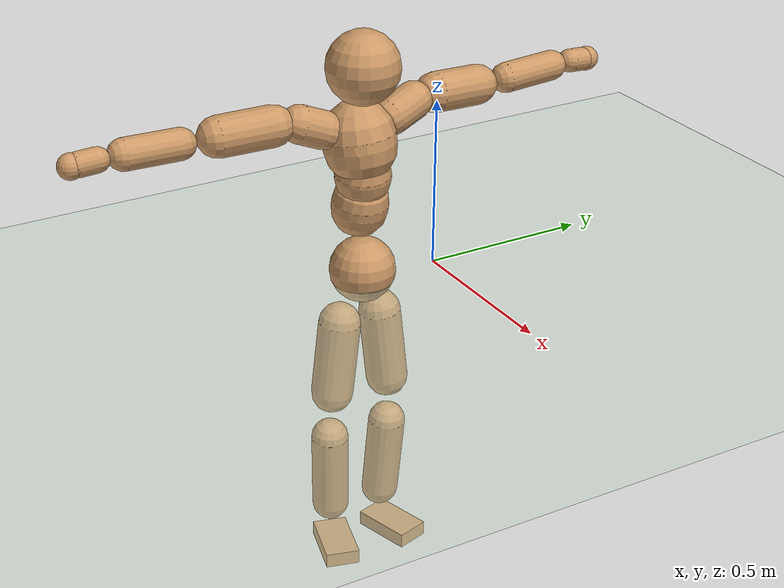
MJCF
<mujoco model="humanoid">
  <compiler coordinate="local"/>
  <default>
    <joint damping="0.0" armature="0.01" stiffness="0.0" limited="true"/>
    <geom conaffinity="1" condim="3" contype="7" margin="0.001" rgba="0.8 0.6 .4 1"/>
  </default>
  <asset>
    <texture type="skybox" builtin="gradient" rgb1=".4 .5 .6" rgb2="0 0 0" width="100" height="100"/>
    <texture builtin="flat" height="1278" mark="cross" markrgb="1 1 1" name="texgeom" random="0.01" rgb1="0.8 0.6 0.4" rgb2="0.8 0.6 0.4" type="cube" width="127"/>
    <texture builtin="checker" height="100" name="texplane" rgb1="0 0 0" rgb2="0.8 0.8 0.8" type="2d" width="100"/>
    <material name="MatPlane" reflectance="0.5" shininess="1" specular="1" texrepeat="60 60" texture="texplane"/>
    <material name="geom" texture="texgeom" texuniform="true"/>
  </asset>
  <worldbody>
    <light cutoff="100" diffuse="1 1 1" dir="-0 0 -1.3" directional="true" exponent="1" pos="0 0 1.3" specular=".1 .1 .1"/>
    <geom conaffinity="1" condim="3" name="floor" pos="0 0 0" rgba="0.8 0.9 0.8 1" size="100 100 .2" type="plane" material="MatPlane"/>
    <body name="Pelvis" pos="-0.0033 -0.2352 0.0328">
      <freejoint name="Pelvis"/>
      <geom type="sphere" contype="1" conaffinity="1" density="500" size="0.0965" pos="0.0000 0.0000 0.0000" name="Pelvis"/>
      <body name="L_Hip" pos="-0.0165 0.0578 -0.0809">
        <joint name="L_Hip_x" type="hinge" pos="0 0 0" axis="1 0 0" stiffness="800" damping="80" armature="0.02" range="-180.0000 180.0000"/>
        <joint name="L_Hip_y" type="hinge" pos="0 0 0" axis="0 1 0" stiffness="800" damping="80" armature="0.02" range="-180.0000 180.0000"/>
        <joint name="L_Hip_z" type="hinge" pos="0 0 0" axis="0 0 1" stiffness="800" damping="80" armature="0.02" range="-180.0000 180.0000"/>
        <geom type="capsule" contype="1" conaffinity="1" density="500" fromto="0.0014 0.0083 -0.0760 0.0057 0.0332 -0.3041" size="0.0624" name="L_Hip"/>
        <body name="L_Knee" pos="0.0072 0.0416 -0.3802">
          <joint name="L_Knee_x" type="hinge" pos="0 0 0" axis="1 0 0" stiffness="800" damping="80" armature="0.02" range="-180.0000 180.0000"/>
          <joint name="L_Knee_y" type="hinge" pos="0 0 0" axis="0 1 0" stiffness="800" damping="80" armature="0.02" range="-180.0000 180.0000"/>
          <joint name="L_Knee_z" type="hinge" pos="0 0 0" axis="0 0 1" stiffness="800" damping="80" armature="0.02" range="-180.0000 180.0000"/>
          <geom type="capsule" contype="1" conaffinity="1" density="500" fromto="-0.0076 -0.0031 -0.0850 -0.0303 -0.0123 -0.3401" size="0.0556" name="L_Knee"/>
          <body name="L_Ankle" pos="-0.0379 -0.0154 -0.4251">
            <joint name="L_Ankle_x" type="hinge" pos="0 0 0" axis="1 0 0" stiffness="800" damping="80" armature="0.02" range="-180.0000 180.0000"/>
            <joint name="L_Ankle_y" type="hinge" pos="0 0 0" axis="0 1 0" stiffness="800" damping="80" armature="0.02" range="-180.0000 180.0000"/>
            <joint name="L_Ankle_z" type="hinge" pos="0 0 0" axis="0 0 1" stiffness="800" damping="80" armature="0.02" range="-180.0000 180.0000"/>
            <geom type="box" contype="1" conaffinity="1" density="500" pos="0.0613 0.0177 -0.0295" size="0.0897 0.0505 0.0221" quat="0.9902 0.0000 0.0000 0.1397" name="L_Ankle"/>
            <body name="L_Toe" pos="0.1226 0.0353 -0.0591">
              <joint name="L_Toe_x" type="hinge" pos="0 0 0" axis="1 0 0" stiffness="500" damping="50" armature="0.02" range="-180.0000 180.0000"/>
              <joint name="L_Toe_y" type="hinge" pos="0 0 0" axis="0 1 0" stiffness="500" damping="50" armature="0.02" range="-180.0000 180.0000"/>
              <joint name="L_Toe_z" type="hinge" pos="0 0 0" axis="0 0 1" stiffness="500" damping="50" armature="0.02" range="-180.0000 180.0000"/>
              <geom type="box" contype="1" conaffinity="1" density="500" pos="0.0000 0.0000 0.0284" size="0.0011 0.0025 0.001" quat="0.9894 0.0000 0.0000 0.1449" name="L_Toe"/>
            </body>
          </body>
        </body>
      </body>
      <body name="R_Hip" pos="-0.0119 -0.0599 -0.0893">
        <joint name="R_Hip_x" type="hinge" pos="0 0 0" axis="1 0 0" stiffness="800" damping="80" armature="0.02" range="-180.0000 180.0000"/>
        <joint name="R_Hip_y" type="hinge" pos="0 0 0" axis="0 1 0" stiffness="800" damping="80" armature="0.02" range="-180.0000 180.0000"/>
        <joint name="R_Hip_z" type="hinge" pos="0 0 0" axis="0 0 1" stiffness="800" damping="80" armature="0.02" range="-180.0000 180.0000"/>
        <geom type="capsule" contype="1" conaffinity="1" density="500" fromto="-0.0011 -0.0081 -0.0759 -0.0043 -0.0324 -0.3034" size="0.0619" name="R_Hip"/>
        <body name="R_Knee" pos="-0.0054 -0.0405 -0.3793">
          <joint name="R_Knee_x" type="hinge" pos="0 0 0" axis="1 0 0" stiffness="800" damping="80" armature="0.02" range="-180.0000 180.0000"/>
          <joint name="R_Knee_y" type="hinge" pos="0 0 0" axis="0 1 0" stiffness="800" damping="80" armature="0.02" range="-180.0000 180.0000"/>
          <joint name="R_Knee_z" type="hinge" pos="0 0 0" axis="0 0 1" stiffness="800" damping="80" armature="0.02" range="-180.0000 180.0000"/>
          <geom type="capsule" contype="1" conaffinity="1" density="500" fromto="-0.0068 0.0040 -0.0838 -0.0274 0.0159 -0.3350" size="0.0555" name="R_Knee"/>
          <body name="R_Ankle" pos="-0.0342 0.0199 -0.4188">
            <joint name="R_Ankle_x" type="hinge" pos="0 0 0" axis="1 0 0" stiffness="800" damping="80" armature="0.02" range="-180.0000 180.0000"/>
            <joint name="R_Ankle_y" type="hinge" pos="0 0 0" axis="0 1 0" stiffness="800" damping="80" armature="0.02" range="-180.0000 180.0000"/>
            <joint name="R_Ankle_z" type="hinge" pos="0 0 0" axis="0 0 1" stiffness="800" damping="80" armature="0.02" range="-180.0000 180.0000"/>
            <geom type="box" contype="1" conaffinity="1" density="500" pos="0.0649 -0.0174 -0.0308" size="0.0896 0.051 0.0221" quat="0.9914 0.0000 0.0000 -0.1306" name="R_Ankle"/>
            <body name="R_Toe" pos="0.1298 -0.0348 -0.0616">
              <joint name="R_Toe_x" type="hinge" pos="0 0 0" axis="1 0 0" stiffness="500" damping="50" armature="0.02" range="-180.0000 180.0000"/>
              <joint name="R_Toe_y" type="hinge" pos="0 0 0" axis="0 1 0" stiffness="500" damping="50" armature="0.02" range="-180.0000 180.0000"/>
              <joint name="R_Toe_z" type="hinge" pos="0 0 0" axis="0 0 1" stiffness="500" damping="50" armature="0.02" range="-180.0000 180.0000"/>
              <geom type="box" contype="1" conaffinity="1" density="500" pos="0.0000 0.0000 0.0302" size="0.0011 0.0025 0.0011" quat="0.9926 0.0000 0.0000 -0.1216" name="R_Toe"/>
            </body>
          </body>
        </body>
      </body>
      <body name="Torso" pos="-0.0394 0.0044 0.1229">
        <joint name="Torso_x" type="hinge" pos="0 0 0" axis="1 0 0" stiffness="1000" damping="100" armature="0.02" range="-180.0000 180.0000"/>
        <joint name="Torso_y" type="hinge" pos="0 0 0" axis="0 1 0" stiffness="1000" damping="100" armature="0.02" range="-180.0000 180.0000"/>
        <joint name="Torso_z" type="hinge" pos="0 0 0" axis="0 0 1" stiffness="1000" damping="100" armature="0.02" range="-180.0000 180.0000"/>
        <geom type="capsule" contype="1" conaffinity="1" density="500" fromto="0.0146 0.0026 0.0801 0.0097 0.0017 0.0534" size="0.0813" name="Torso"/>
        <body name="Spine" pos="0.0244 0.0043 0.1335">
          <joint name="Spine_x" type="hinge" pos="0 0 0" axis="1 0 0" stiffness="1000" damping="100" armature="0.02" range="-180.0000 180.0000"/>
          <joint name="Spine_y" type="hinge" pos="0 0 0" axis="0 1 0" stiffness="1000" damping="100" armature="0.02" range="-180.0000 180.0000"/>
          <joint name="Spine_z" type="hinge" pos="0 0 0" axis="0 0 1" stiffness="1000" damping="100" armature="0.02" range="-180.0000 180.0000"/>
          <geom type="capsule" contype="1" conaffinity="1" density="500" fromto="0.0023 -0.0011 0.0326 0.0015 -0.0007 0.0217" size="0.0811" name="Spine"/>
          <body name="Chest" pos="0.0038 -0.0018 0.0543">
            <joint name="Chest_x" type="hinge" pos="0 0 0" axis="1 0 0" stiffness="1000" damping="100" armature="0.02" range="-180.0000 180.0000"/>
            <joint name="Chest_y" type="hinge" pos="0 0 0" axis="0 1 0" stiffness="1000" damping="100" armature="0.02" range="-180.0000 180.0000"/>
            <joint name="Chest_z" type="hinge" pos="0 0 0" axis="0 0 1" stiffness="1000" damping="100" armature="0.02" range="-180.0000 180.0000"/>
            <geom type="capsule" contype="1" conaffinity="1" density="500" fromto="-0.0153 -0.0051 0.0873 -0.0102 -0.0034 0.0582" size="0.1048" name="Chest"/>
            <body name="Neck" pos="-0.0373 -0.015 0.2103">
              <joint name="Neck_x" type="hinge" pos="0 0 0" axis="1 0 0" stiffness="500" damping="50" armature="0.02" range="-180.0000 180.0000"/>
              <joint name="Neck_y" type="hinge" pos="0 0 0" axis="0 1 0" stiffness="500" damping="50" armature="0.02" range="-180.0000 180.0000"/>
              <joint name="Neck_z" type="hinge" pos="0 0 0" axis="0 0 1" stiffness="500" damping="50" armature="0.02" range="-180.0000 180.0000"/>
              <geom type="capsule" contype="1" conaffinity="1" density="500" fromto="0.0090 0.0020 0.0167 0.0362 0.0079 0.0668" size="0.0462" name="Neck"/>
              <body name="Head" pos="0.0452 0.0098 0.0834">
                <joint name="Head_x" type="hinge" pos="0 0 0" axis="1 0 0" stiffness="500" damping="50" armature="0.02" range="-180.0000 180.0000"/>
                <joint name="Head_y" type="hinge" pos="0 0 0" axis="0 1 0" stiffness="500" damping="50" armature="0.02" range="-180.0000 180.0000"/>
                <joint name="Head_z" type="hinge" pos="0 0 0" axis="0 0 1" stiffness="500" damping="50" armature="0.02" range="-180.0000 180.0000"/>
                <geom type="sphere" contype="1" conaffinity="1" density="500" size="0.1052" pos="0.0000 0.0000 0.0000" name="Head"/>
              </body>
            </body>
            <body name="L_Thorax" pos="-0.0166 0.0756 0.114">
              <joint name="L_Thorax_x" type="hinge" pos="0 0 0" axis="1 0 0" stiffness="500" damping="50" armature="0.02" range="-180.0000 180.0000"/>
              <joint name="L_Thorax_y" type="hinge" pos="0 0 0" axis="0 1 0" stiffness="500" damping="50" armature="0.02" range="-180.0000 180.0000"/>
              <joint name="L_Thorax_z" type="hinge" pos="0 0 0" axis="0 0 1" stiffness="500" damping="50" armature="0.02" range="-180.0000 180.0000"/>
              <geom type="capsule" contype="1" conaffinity="1" density="500" fromto="-0.0043 0.0261 0.0091 -0.0171 0.1042 0.0365" size="0.0554" name="L_Thorax"/>
              <body name="L_Shoulder" pos="-0.0213 0.1303 0.0456">
                <joint name="L_Shoulder_x" type="hinge" pos="0 0 0" axis="1 0 0" stiffness="500" damping="50" armature="0.02" range="-720.0000 720.0000"/>
                <joint name="L_Shoulder_y" type="hinge" pos="0 0 0" axis="0 1 0" stiffness="500" damping="50" armature="0.02" range="-720.0000 720.0000"/>
                <joint name="L_Shoulder_z" type="hinge" pos="0 0 0" axis="0 0 1" stiffness="500" damping="50" armature="0.02" range="-720.0000 720.0000"/>
                <geom type="capsule" contype="1" conaffinity="1" density="500" fromto="-0.0052 0.0506 -0.0032 -0.0206 0.2024 -0.0126" size="0.0582" name="L_Shoulder"/>
                <body name="L_Elbow" pos="-0.0258 0.253 -0.0158">
                  <joint name="L_Elbow_x" type="hinge" pos="0 0 0" axis="1 0 0" stiffness="500" damping="50" armature="0.02" range="-720.0000 720.0000"/>
                  <joint name="L_Elbow_y" type="hinge" pos="0 0 0" axis="0 1 0" stiffness="500" damping="50" armature="0.02" range="-720.0000 720.0000"/>
                  <joint name="L_Elbow_z" type="hinge" pos="0 0 0" axis="0 0 1" stiffness="500" damping="50" armature="0.02" range="-720.0000 720.0000"/>
                  <geom type="capsule" contype="1" conaffinity="1" density="500" fromto="-0.0011 0.0534 0.0026 -0.0045 0.2135 0.0104" size="0.0445" name="L_Elbow"/>
                  <body name="L_Wrist" pos="-0.0057 0.2669 0.0131">
                    <joint name="L_Wrist_x" type="hinge" pos="0 0 0" axis="1 0 0" stiffness="300" damping="30" armature="0.02" range="-180.0000 180.0000"/>
                    <joint name="L_Wrist_y" type="hinge" pos="0 0 0" axis="0 1 0" stiffness="300" damping="30" armature="0.02" range="-180.0000 180.0000"/>
                    <joint name="L_Wrist_z" type="hinge" pos="0 0 0" axis="0 0 1" stiffness="300" damping="30" armature="0.02" range="-180.0000 180.0000"/>
                    <geom type="capsule" contype="1" conaffinity="1" density="500" fromto="-0.0031 0.0175 -0.0022 -0.0125 0.0702 -0.0086" size="0.0346" name="L_Wrist"/>
                    <body name="L_Hand" pos="-0.0156 0.0877 -0.0108">
                      <joint name="L_Hand_x" type="hinge" pos="0 0 0" axis="1 0 0" stiffness="300" damping="30" armature="0.02" range="-180.0000 180.0000"/>
                      <joint name="L_Hand_y" type="hinge" pos="0 0 0" axis="0 1 0" stiffness="300" damping="30" armature="0.02" range="-180.0000 180.0000"/>
                      <joint name="L_Hand_z" type="hinge" pos="0 0 0" axis="0 0 1" stiffness="300" damping="30" armature="0.02" range="-180.0000 180.0000"/>
                      <geom type="sphere" contype="1" conaffinity="1" density="500" size="0.0360" pos="0.0000 0.0000 0.0000" name="L_Hand"/>
                    </body>
                  </body>
                </body>
              </body>
            </body>
            <body name="R_Thorax" pos="-0.0226 -0.0862 0.1123">
              <joint name="R_Thorax_x" type="hinge" pos="0 0 0" axis="1 0 0" stiffness="500" damping="50" armature="0.02" range="-180.0000 180.0000"/>
              <joint name="R_Thorax_y" type="hinge" pos="0 0 0" axis="0 1 0" stiffness="500" damping="50" armature="0.02" range="-180.0000 180.0000"/>
              <joint name="R_Thorax_z" type="hinge" pos="0 0 0" axis="0 0 1" stiffness="500" damping="50" armature="0.02" range="-180.0000 180.0000"/>
              <geom type="capsule" contype="1" conaffinity="1" density="500" fromto="-0.0021 -0.0236 0.0096 -0.0083 -0.0943 0.0383" size="0.0549" name="R_Thorax"/>
              <body name="R_Shoulder" pos="-0.0103 -0.1178 0.0479">
                <joint name="R_Shoulder_x" type="hinge" pos="0 0 0" axis="1 0 0" stiffness="500" damping="50" armature="0.02" range="-720.0000 720.0000"/>
                <joint name="R_Shoulder_y" type="hinge" pos="0 0 0" axis="0 1 0" stiffness="500" damping="50" armature="0.02" range="-720.0000 720.0000"/>
                <joint name="R_Shoulder_z" type="hinge" pos="0 0 0" axis="0 0 1" stiffness="500" damping="50" armature="0.02" range="-720.0000 720.0000"/>
                <geom type="capsule" contype="1" conaffinity="1" density="500" fromto="-0.0069 -0.0515 -0.0025 -0.0276 -0.2060 -0.0102" size="0.0584" name="R_Shoulder"/>
                <body name="R_Elbow" pos="-0.0345 -0.2574 -0.0127">
                  <joint name="R_Elbow_x" type="hinge" pos="0 0 0" axis="1 0 0" stiffness="500" damping="50" armature="0.02" range="-720.0000 720.0000"/>
                  <joint name="R_Elbow_y" type="hinge" pos="0 0 0" axis="0 1 0" stiffness="500" damping="50" armature="0.02" range="-720.0000 720.0000"/>
                  <joint name="R_Elbow_z" type="hinge" pos="0 0 0" axis="0 0 1" stiffness="500" damping="50" armature="0.02" range="-720.0000 720.0000"/>
                  <geom type="capsule" contype="1" conaffinity="1" density="500" fromto="-0.0010 -0.0532 0.0008 -0.0038 -0.2129 0.0031" size="0.0448" name="R_Elbow"/>
                  <body name="R_Wrist" pos="-0.0048 -0.2661 0.0039">
                    <joint name="R_Wrist_x" type="hinge" pos="0 0 0" axis="1 0 0" stiffness="300" damping="30" armature="0.02" range="-180.0000 180.0000"/>
                    <joint name="R_Wrist_y" type="hinge" pos="0 0 0" axis="0 1 0" stiffness="300" damping="30" armature="0.02" range="-180.0000 180.0000"/>
                    <joint name="R_Wrist_z" type="hinge" pos="0 0 0" axis="0 0 1" stiffness="300" damping="30" armature="0.02" range="-180.0000 180.0000"/>
                    <geom type="capsule" contype="1" conaffinity="1" density="500" fromto="-0.0020 -0.0177 -0.0017 -0.0080 -0.0709 -0.0070" size="0.0349" name="R_Wrist"/>
                    <body name="R_Hand" pos="-0.01 -0.0886 -0.0087">
                      <joint name="R_Hand_x" type="hinge" pos="0 0 0" axis="1 0 0" stiffness="300" damping="30" armature="0.02" range="-180.0000 180.0000"/>
                      <joint name="R_Hand_y" type="hinge" pos="0 0 0" axis="0 1 0" stiffness="300" damping="30" armature="0.02" range="-180.0000 180.0000"/>
                      <joint name="R_Hand_z" type="hinge" pos="0 0 0" axis="0 0 1" stiffness="300" damping="30" armature="0.02" range="-180.0000 180.0000"/>
                      <geom type="sphere" contype="1" conaffinity="1" density="500" size="0.0361" pos="0.0000 0.0000 0.0000" name="R_Hand"/>
                    </body>
                  </body>
                </body>
              </body>
            </body>
          </body>
        </body>
      </body>
    </body>
  </worldbody>
  <actuator>
    <motor name="L_Hip_x" joint="L_Hip_x" gear="500"/>
    <motor name="L_Hip_y" joint="L_Hip_y" gear="500"/>
    <motor name="L_Hip_z" joint="L_Hip_z" gear="500"/>
    <motor name="L_Knee_x" joint="L_Knee_x" gear="500"/>
    <motor name="L_Knee_y" joint="L_Knee_y" gear="500"/>
    <motor name="L_Knee_z" joint="L_Knee_z" gear="500"/>
    <motor name="L_Ankle_x" joint="L_Ankle_x" gear="500"/>
    <motor name="L_Ankle_y" joint="L_Ankle_y" gear="500"/>
    <motor name="L_Ankle_z" joint="L_Ankle_z" gear="500"/>
    <motor name="L_Toe_x" joint="L_Toe_x" gear="500"/>
    <motor name="L_Toe_y" joint="L_Toe_y" gear="500"/>
    <motor name="L_Toe_z" joint="L_Toe_z" gear="500"/>
    <motor name="R_Hip_x" joint="R_Hip_x" gear="500"/>
    <motor name="R_Hip_y" joint="R_Hip_y" gear="500"/>
    <motor name="R_Hip_z" joint="R_Hip_z" gear="500"/>
    <motor name="R_Knee_x" joint="R_Knee_x" gear="500"/>
    <motor name="R_Knee_y" joint="R_Knee_y" gear="500"/>
    <motor name="R_Knee_z" joint="R_Knee_z" gear="500"/>
    <motor name="R_Ankle_x" joint="R_Ankle_x" gear="500"/>
    <motor name="R_Ankle_y" joint="R_Ankle_y" gear="500"/>
    <motor name="R_Ankle_z" joint="R_Ankle_z" gear="500"/>
    <motor name="R_Toe_x" joint="R_Toe_x" gear="500"/>
    <motor name="R_Toe_y" joint="R_Toe_y" gear="500"/>
    <motor name="R_Toe_z" joint="R_Toe_z" gear="500"/>
    <motor name="Torso_x" joint="Torso_x" gear="500"/>
    <motor name="Torso_y" joint="Torso_y" gear="500"/>
    <motor name="Torso_z" joint="Torso_z" gear="500"/>
    <motor name="Spine_x" joint="Spine_x" gear="500"/>
    <motor name="Spine_y" joint="Spine_y" gear="500"/>
    <motor name="Spine_z" joint="Spine_z" gear="500"/>
    <motor name="Chest_x" joint="Chest_x" gear="500"/>
    <motor name="Chest_y" joint="Chest_y" gear="500"/>
    <motor name="Chest_z" joint="Chest_z" gear="500"/>
    <motor name="Neck_x" joint="Neck_x" gear="500"/>
    <motor name="Neck_y" joint="Neck_y" gear="500"/>
    <motor name="Neck_z" joint="Neck_z" gear="500"/>
    <motor name="Head_x" joint="Head_x" gear="500"/>
    <motor name="Head_y" joint="Head_y" gear="500"/>
    <motor name="Head_z" joint="Head_z" gear="500"/>
    <motor name="L_Thorax_x" joint="L_Thorax_x" gear="500"/>
    <motor name="L_Thorax_y" joint="L_Thorax_y" gear="500"/>
    <motor name="L_Thorax_z" joint="L_Thorax_z" gear="500"/>
    <motor name="L_Shoulder_x" joint="L_Shoulder_x" gear="500"/>
    <motor name="L_Shoulder_y" joint="L_Shoulder_y" gear="500"/>
    <motor name="L_Shoulder_z" joint="L_Shoulder_z" gear="500"/>
    <motor name="L_Elbow_x" joint="L_Elbow_x" gear="500"/>
    <motor name="L_Elbow_y" joint="L_Elbow_y" gear="500"/>
    <motor name="L_Elbow_z" joint="L_Elbow_z" gear="500"/>
    <motor name="L_Wrist_x" joint="L_Wrist_x" gear="500"/>
    <motor name="L_Wrist_y" joint="L_Wrist_y" gear="500"/>
    <motor name="L_Wrist_z" joint="L_Wrist_z" gear="500"/>
    <motor name="L_Hand_x" joint="L_Hand_x" gear="500"/>
    <motor name="L_Hand_y" joint="L_Hand_y" gear="500"/>
    <motor name="L_Hand_z" joint="L_Hand_z" gear="500"/>
    <motor name="R_Thorax_x" joint="R_Thorax_x" gear="500"/>
    <motor name="R_Thorax_y" joint="R_Thorax_y" gear="500"/>
    <motor name="R_Thorax_z" joint="R_Thorax_z" gear="500"/>
    <motor name="R_Shoulder_x" joint="R_Shoulder_x" gear="500"/>
    <motor name="R_Shoulder_y" joint="R_Shoulder_y" gear="500"/>
    <motor name="R_Shoulder_z" joint="R_Shoulder_z" gear="500"/>
    <motor name="R_Elbow_x" joint="R_Elbow_x" gear="500"/>
    <motor name="R_Elbow_y" joint="R_Elbow_y" gear="500"/>
    <motor name="R_Elbow_z" joint="R_Elbow_z" gear="500"/>
    <motor name="R_Wrist_x" joint="R_Wrist_x" gear="500"/>
    <motor name="R_Wrist_y" joint="R_Wrist_y" gear="500"/>
    <motor name="R_Wrist_z" joint="R_Wrist_z" gear="500"/>
    <motor name="R_Hand_x" joint="R_Hand_x" gear="500"/>
    <motor name="R_Hand_y" joint="R_Hand_y" gear="500"/>
    <motor name="R_Hand_z" joint="R_Hand_z" gear="500"/>
  </actuator>
  <contact>
    <exclude body1="Torso" body2="Chest"/>
    <exclude body1="Head" body2="Chest"/>
    <exclude body1="R_Knee" body2="R_Toe"/>
    <exclude body1="R_Knee" body2="L_Ankle"/>
    <exclude body1="R_Knee" body2="L_Toe"/>
    <exclude body1="L_Knee" body2="L_Toe"/>
    <exclude body1="L_Knee" body2="R_Ankle"/>
    <exclude body1="L_Knee" body2="R_Toe"/>
    <exclude body1="L_Shoulder" body2="Chest"/>
    <exclude body1="R_Shoulder" body2="Chest"/>
  </contact>
  <sensor/>
  <size njmax="700" nconmax="700"/>
</mujoco>
